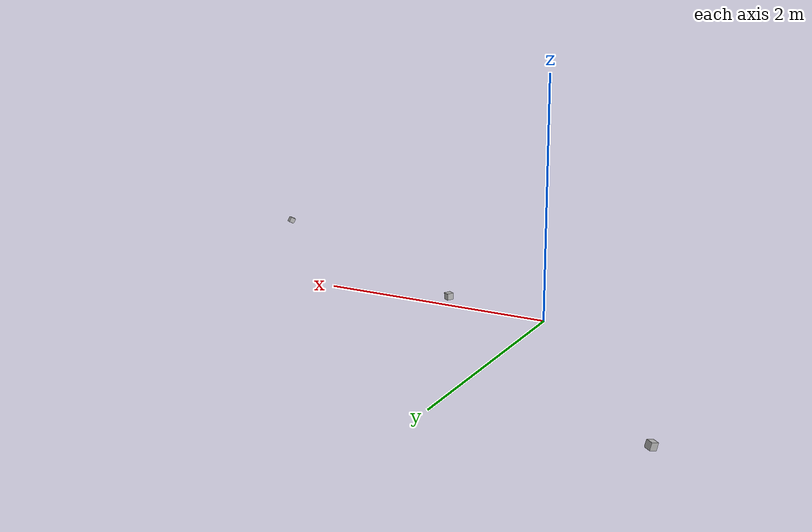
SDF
<?xml version="1.0"?>
<sdf version="1.6">
  <model name="new_sensorsR">
    <static>true</static>
    <link name="sensorsR_link">
      <visual name="visual_sensorsR">
        <cast_shadows>true</cast_shadows>
        <geometry>
          <mesh>
            <uri>model://cbrSensorsR/meshes/sensorsR.dae</uri>
          </mesh>
        </geometry>
        <material>
          <script>
            <uri>model://cbrSensorsR/materials/scripts</uri>
            <uri>model://cbrSensorsR/materials/textures</uri>
            <name>sensorsR/color</name>
          </script>
        </material>
      </visual>
      <collision name="collision_sensorsR">
        <geometry>
          <mesh>
            <uri>model://cbrSensorsR/meshes/sensorsR.dae</uri>
          </mesh>
        </geometry>
      </collision>
    </link>
  </model>
</sdf>
